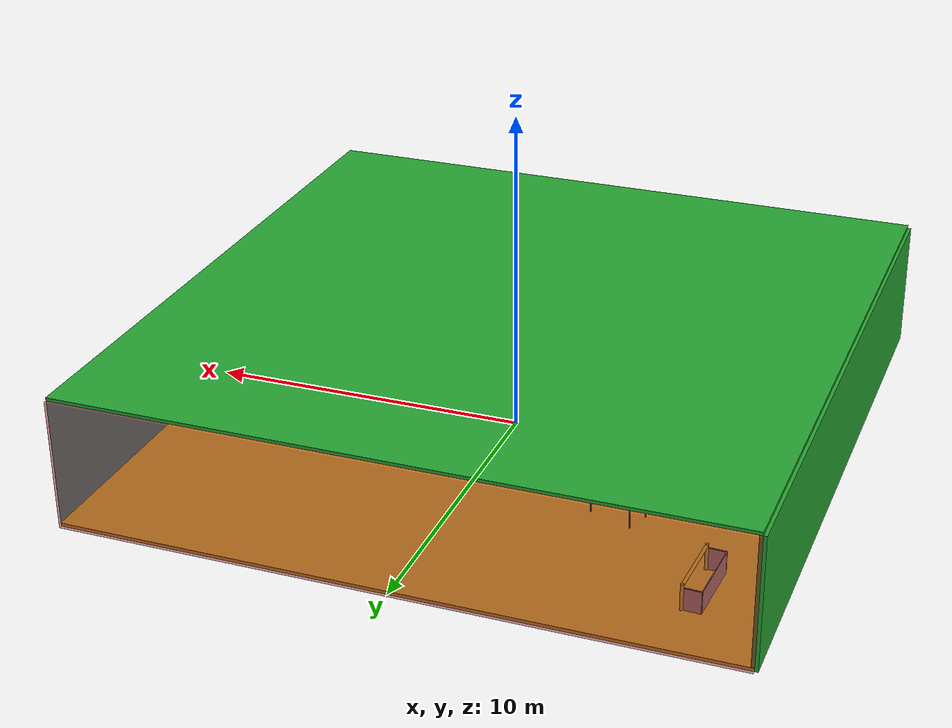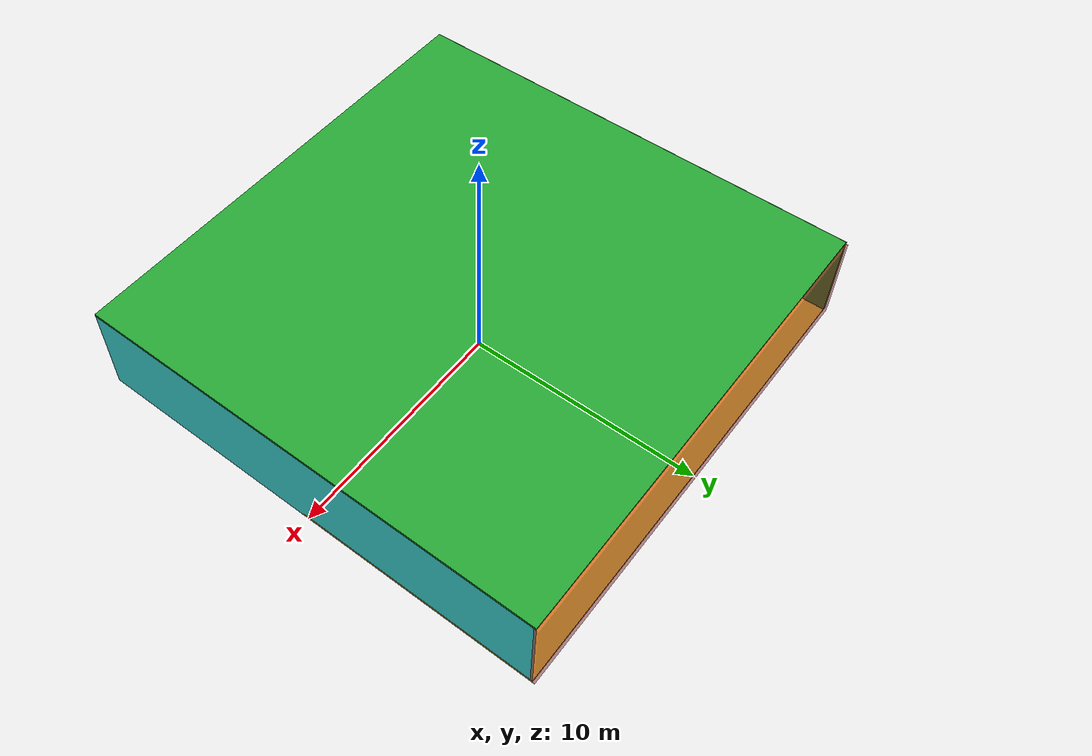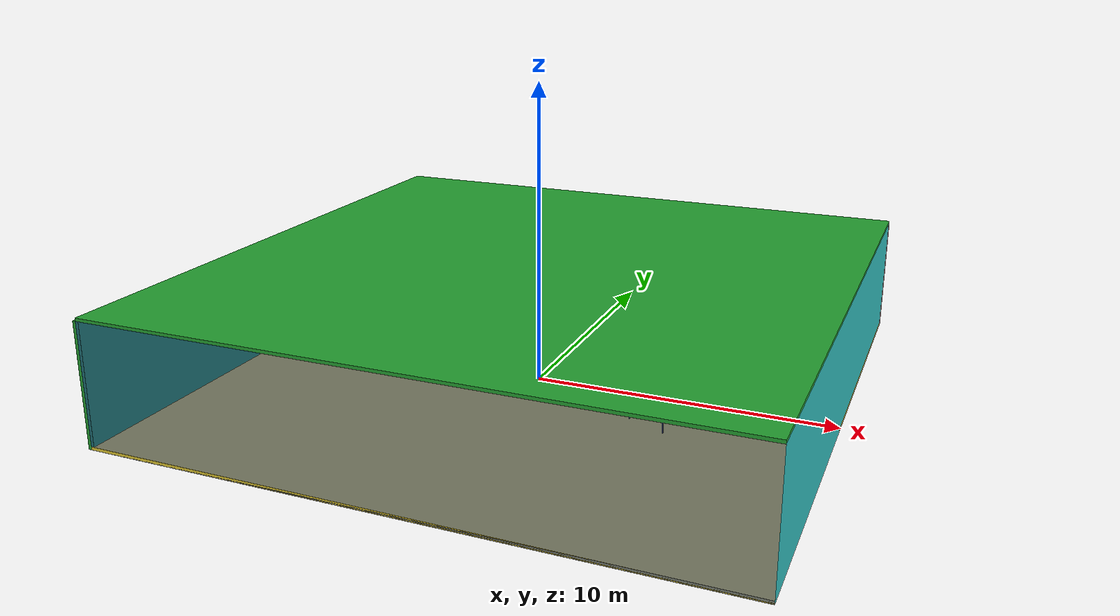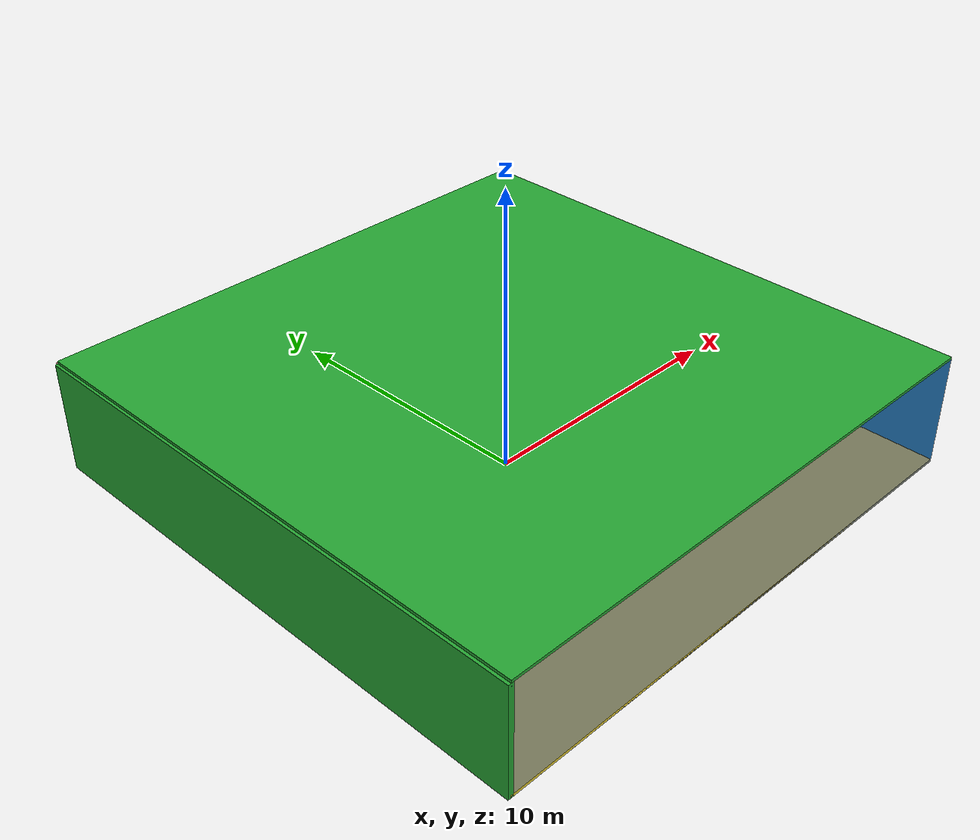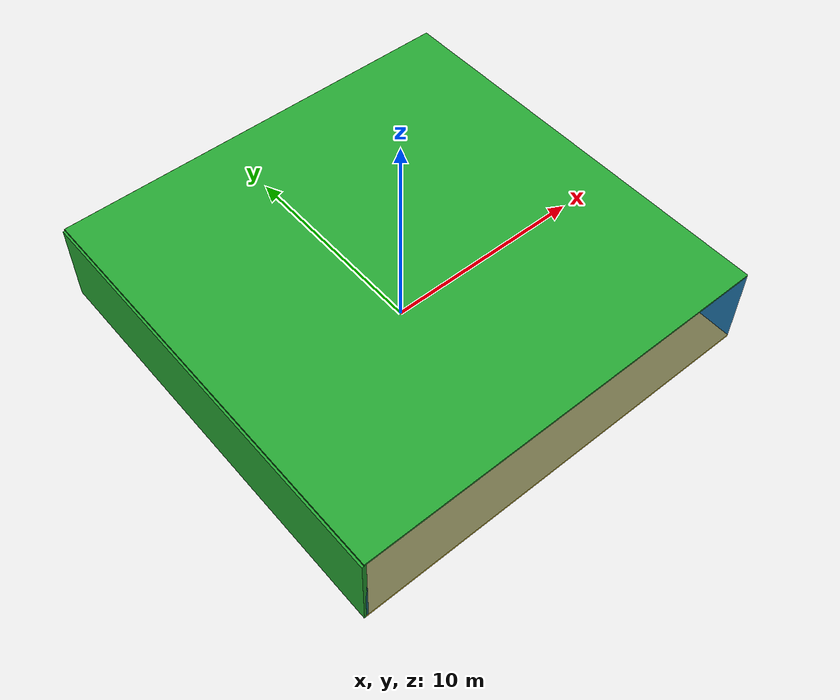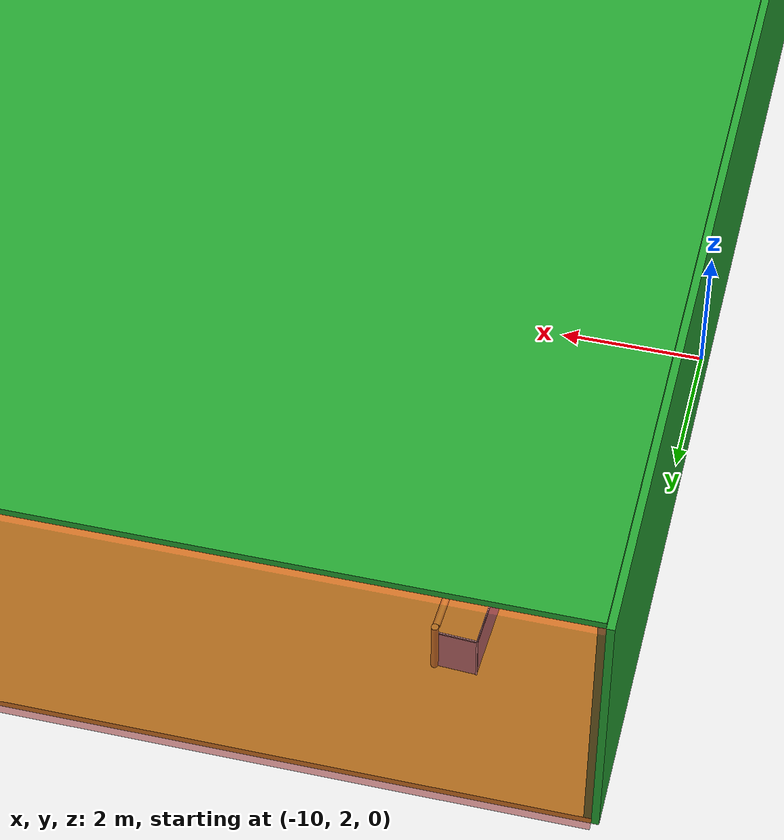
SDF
<sdf version="1.4">
 <world name="default">
  <physics type="ode">
   <max_step_size>0.001</max_step_size>
   <real_time_factor>1</real_time_factor>
   <real_time_update_rate>1000</real_time_update_rate>
   <gravity>0 0 -9.8</gravity>
  </physics>
  <scene><ambient>0.4 0.4 0.4 1</ambient><background>0.7 0.7 0.7 1</background><shadows>1</shadows></scene>
  <model name="Surrounding">
   <static>1</static>
   <link name="Ceiling">
    <collision name="Ceiling_Collision"><geometry><box><size>20 20 0.1</size></box></geometry></collision>
    <visual name="Ceiling_Visual">
     <geometry><box><size>20 20 0.1</size></box></geometry>
     <material>
      <script><uri>file://media/materials/scripts/gazebo.material</uri><name>Gazebo/Green</name></script>
     </material>
    </visual>
    <pose>0 0 4.05 0 0 0</pose>
   </link>
   <link name="Wall_South">
    <collision name="Wall_South_Collision">
     <geometry><box><size>20 0 4</size></box></geometry>
     <pose>0 0 2 0 -0 0</pose>
    </collision>
    <visual name="Wall_South_Visual">
     <pose>0 0 2 0 -0 0</pose>
     <geometry><box><size>20 0 4</size></box></geometry>
     <material>
      <script><uri>file://media/materials/scripts/gazebo.material</uri><name>Gazebo/BlueTransparent</name></script>
     </material>
    </visual>
    <velocity_decay><linear>0</linear><angular>0</angular></velocity_decay>
    <pose>0 -10 0 0 -0 0</pose>
   </link>
   <link name="Wall_East">
    <collision name="Wall_21_Collision">
     <geometry><box><size>20 0 4</size></box></geometry>
     <pose>0 0 2 0 -0 0</pose>
    </collision>
    <visual name="Wall_21_Visual">
     <pose>0 0 2 0 -0 0</pose>
     <geometry><box><size>20 0 4</size></box></geometry>
     <material>
      <script><uri>file://media/materials/scripts/gazebo.material</uri><name>Gazebo/Turquoise</name></script>
     </material>
    </visual>
    <velocity_decay><linear>0</linear><angular>0</angular></velocity_decay>
    <pose>10 0 0 0 -0 1.5708</pose>
   </link>
   <link name="Wall_North">
    <collision name="Wall_22_Collision">
     <geometry><box><size>20 0.2 4</size></box></geometry>
     <pose>0 0 2 0 -0 0</pose>
    </collision>
    <visual name="Wall_22_Visual">
     <pose>0 0 2 0 -0 0</pose>
     <geometry><box><size>20 0.2 4</size></box></geometry>
     <material>
      <script><uri>file://media/materials/scripts/gazebo.material</uri><name>Gazebo/RedTransparent</name></script>
     </material>
    </visual>
    <velocity_decay><linear>0</linear><angular>0</angular></velocity_decay>
    <pose>0 10 0 0 -0 0</pose>
   </link>
   <link name="Wall_West">
    <collision name="Wall_23_Collision">
     <geometry><box><size>20 0.2 4</size></box></geometry>
     <pose>0 0 2 0 -0 0</pose>
    </collision>
    <visual name="Wall_23_Visual">
     <pose>0 0 2 0 -0 0</pose>
     <geometry><box><size>20 0.2 4</size></box></geometry>
     <material>
      <script><uri>file://media/materials/scripts/gazebo.material</uri><name>Gazebo/GreenGlow</name></script>
     </material>
    </visual>
    <velocity_decay><linear>0</linear><angular>0</angular></velocity_decay>
    <pose>-10 0 0 0 0 -1.5708</pose>
   </link>
   <link name="Ground_link">
    <collision name="collision">
     <pose>0 0 .05 0 -0 0</pose>
     <geometry><box><size>20 20 0.1</size></box></geometry>
    </collision>
    <visual name="visual">
     <pose>0 0 .05 0 -0 0</pose>
     <geometry><box><size>20 20 0.1</size></box></geometry>
     <material>
      <script><uri>file://media/materials/scripts/gazebo.material</uri><name>Gazebo/ZincYellow</name></script>
     </material>
    </visual>
   </link>
   <static>1</static>
  </model>
  <spherical_coordinates>
   <surface_model>EARTH_WGS84</surface_model>
   <latitude_deg>0</latitude_deg>
   <longitude_deg>0</longitude_deg>
   <elevation>0</elevation>
   <heading_deg>0</heading_deg>
  </spherical_coordinates>
  <light name="lightball_0" type="diffuse">
   <diffuse>0.8 0.8 0.8 1</diffuse>
   <specular>0.2 0.2 0.2 1</specular>
   <attenuation>
    <range>100</range>
    <constant>0.7</constant>
    <linear>0.01</linear>
    <quadratic>0.001</quadratic>
   </attenuation>
   <direction>-0.5 0.1 -0.9</direction>
   <pose>-0.0749941641026 5.3763494284 2.04162992967 0 0 0</pose>
  </light>
  <light name="lightball_1" type="diffuse">
   <diffuse>0.8 0.8 0.8 1</diffuse>
   <specular>0.2 0.2 0.2 1</specular>
   <attenuation>
    <range>100</range>
    <constant>0.7</constant>
    <linear>0.01</linear>
    <quadratic>0.001</quadratic>
   </attenuation>
   <direction>-0.5 0.1 -0.9</direction>
   <pose>4.03885221552 7.36323062318 3.81836424077 0 0 0</pose>
  </light>
  <light name="lightball_2" type="diffuse">
   <diffuse>0.8 0.8 0.8 1</diffuse>
   <specular>0.2 0.2 0.2 1</specular>
   <attenuation>
    <range>100</range>
    <constant>0.7</constant>
    <linear>0.01</linear>
    <quadratic>0.001</quadratic>
   </attenuation>
   <direction>-0.5 0.1 -0.9</direction>
   <pose>6.65970235185 9.92614696054 2.69163177671 0 0 0</pose>
  </light>
  <light name="lightball_3" type="diffuse">
   <diffuse>0.8 0.8 0.8 1</diffuse>
   <specular>0.2 0.2 0.2 1</specular>
   <attenuation>
    <range>100</range>
    <constant>0.7</constant>
    <linear>0.01</linear>
    <quadratic>0.001</quadratic>
   </attenuation>
   <direction>-0.5 0.1 -0.9</direction>
   <pose>2.09702891374 1.29525528337 3.00923442334 0 0 0</pose>
  </light>
  <include>
   <uri>model://robocup_3Dsim_goal</uri>
   <pose>-7.62039421821 7.09155744707 0 0 0 3.09063281923</pose>
  </include>
  <include><uri>model://cabinet</uri><pose>-4.51077132899 2.0457606648 0 0 0 1.90948516037</pose></include>
  <include><uri>model://table</uri><pose>-4.59821946331 4.17059367514 0 0 0 2.80270249597</pose></include>
  <include><uri>model://table</uri><pose>4.68229618855 -1.98368989935 0 0 0 2.70402741827</pose></include>
  <include>
   <uri>model://construction_cone</uri>
   <pose>7.23208107212 2.22497328464 0 0 0 1.77013346257</pose>
  </include>
 </world>
</sdf>

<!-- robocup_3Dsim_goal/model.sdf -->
<sdf version="1.5">
  <model name="robocup_3d_goal">
    <static>true</static>
    <link name="left_post">
      <pose>0 1.05 0.45 0 0 0</pose>
      <collision name="collision">
        <geometry>
          <cylinder>
            <radius>0.05</radius>
            <length>0.9</length>
          </cylinder>
        </geometry>
      </collision>
      <visual name="visual">
        <geometry>
          <cylinder>
            <radius>0.05</radius>
            <length>0.9</length>
          </cylinder>
        </geometry>
        <material>
          <script>
            <uri>file://media/materials/scripts/gazebo.material</uri>
            <name>Gazebo/ZincYellow</name>
          </script>
        </material>
      </visual>
    </link>
    <link name="left_support_horiz_lower">
      <pose>0.30 1.05 0.01 0 0 0</pose>
      <collision name="collision">
        <geometry>
          <box>
            <size>0.50 0.02 0.02</size>
          </box>
        </geometry>
      </collision>
      <visual name="visual">
        <geometry>
          <box>
            <size>0.50 0.02 0.02</size>
          </box>
        </geometry>
        <material>
          <script>
            <uri>file://media/materials/scripts/gazebo.material</uri>
            <name>Gazebo/White</name>
          </script>
        </material>
      </visual>
    </link>
    <link name="left_support_horiz_upper">
      <pose>0.30 1.05 0.79 0 0 0</pose>
      <collision name="collision">
        <geometry>
          <box>
            <size>0.50 0.02 0.02</size>
          </box>
        </geometry>
      </collision>
      <visual name="visual">
        <geometry>
          <box>
            <size>0.50 0.02 0.02</size>
          </box>
        </geometry>
        <material>
          <script>
            <uri>file://media/materials/scripts/gazebo.material</uri>
            <name>Gazebo/White</name>
          </script>
        </material>
      </visual>
    </link>
    <link name="left_support_vertical">
      <pose>0.56 1.05 0.4 0 1.5708 0</pose>
      <collision name="collision">
        <geometry>
          <box>
            <size>0.80 0.02 0.02</size>
          </box>
        </geometry>
      </collision>
      <visual name="visual">
        <geometry>
          <box>
            <size>0.80 0.02 0.02</size>
          </box>
        </geometry>
        <material>
          <script>
            <uri>file://media/materials/scripts/gazebo.material</uri>
            <name>Gazebo/White</name>
          </script>
        </material>
      </visual>
    </link>
    <link name="right_support_horiz_lower">
      <pose>0.30 -1.05 0.01 0 0 0</pose>
      <collision name="collision">
        <geometry>
          <box>
            <size>0.50 0.02 0.02</size>
          </box>
        </geometry>
      </collision>
      <visual name="visual">
        <geometry>
          <box>
            <size>0.50 0.02 0.02</size>
          </box>
        </geometry>
        <material>
          <script>
            <uri>file://media/materials/scripts/gazebo.material</uri>
            <name>Gazebo/White</name>
          </script>
        </material>
      </visual>
    </link>
    <link name="right_support_horiz_upper">
      <pose>0.30 -1.05 0.79 0 0 0</pose>
      <collision name="collision">
        <geometry>
          <box>
            <size>0.50 0.02 0.02</size>
          </box>
        </geometry>
      </collision>
      <visual name="visual">
        <geometry>
          <box>
            <size>0.50 0.02 0.02</size>
          </box>
        </geometry>
        <material>
          <script>
            <uri>file://media/materials/scripts/gazebo.material</uri>
            <name>Gazebo/White</name>
          </script>
        </material>
      </visual>
    </link>
    <link name="right_support_vertical">
      <pose>0.56 -1.05 0.4 0 1.5708 0</pose>
      <collision name="collision">
        <geometry>
          <box>
            <size>0.80 0.02 0.02</size>
          </box>
        </geometry>
      </collision>
      <visual name="visual">
        <geometry>
          <box>
            <size>0.80 0.02 0.02</size>
          </box>
        </geometry>
        <material>
          <script>
            <uri>file://media/materials/scripts/gazebo.material</uri>
            <name>Gazebo/White</name>
          </script>
        </material>
      </visual>
    </link>
    <link name="center_support_horiz_lower">
      <pose>0.56 0 0.01 0 1.5708 0</pose>
      <collision name="collision">
        <geometry>
          <box>
            <size>0.02 2.08 0.02</size>
          </box>
        </geometry>
      </collision>
      <visual name="visual">
        <geometry>
          <box>
            <size>0.02 2.08 0.02</size>
          </box>
        </geometry>
        <material>
          <script>
            <uri>file://media/materials/scripts/gazebo.material</uri>
            <name>Gazebo/White</name>
          </script>
        </material>
      </visual>
    </link>
    <link name="center_support_horiz_upper">
      <pose>0.56 0 0.79 0 1.5708 0</pose>
      <collision name="collision">
        <geometry>
          <box>
            <size>0.02 2.08 0.02</size>
          </box>
        </geometry>
      </collision>
      <visual name="visual">
        <geometry>
          <box>
            <size>0.02 2.08 0.02</size>
          </box>
        </geometry>
        <material>
          <script>
            <uri>file://media/materials/scripts/gazebo.material</uri>
            <name>Gazebo/White</name>
          </script>
        </material>
      </visual>
    </link>
    <link name="right_post">
      <pose>0 -1.05 0.45 0 0 0</pose>
      <collision name="collision">
        <geometry>
          <cylinder>
            <radius>0.05</radius>
            <length>0.9</length>
          </cylinder>
        </geometry>
      </collision>
      <visual name="visual">
        <geometry>
          <cylinder>
            <radius>0.05</radius>
            <length>0.9</length>
          </cylinder>
        </geometry>
        <material>
          <script>
            <uri>file://media/materials/scripts/gazebo.material</uri>
            <name>Gazebo/ZincYellow</name>
          </script>
        </material>
      </visual>
    </link>
    <link name="crossbar">
      <pose>0 0 0.85 1.57 1.57 0</pose>
      <collision name="collision">
        <geometry>
          <cylinder>
            <radius>0.05</radius>
            <length>2.0</length>
          </cylinder>
        </geometry>
      </collision>
      <visual name="visual">
        <geometry>
          <cylinder>
            <radius>0.05</radius>
            <length>2.0</length>
          </cylinder>
        </geometry>
        <material>
          <script>
            <uri>file://media/materials/scripts/gazebo.material</uri>
            <name>Gazebo/ZincYellow</name>
          </script>
        </material>
      </visual>
    </link>
    <link name="center_net">
      <pose>0.56 0 0.40 0 0 0</pose>
      <collision name="collision">
        <geometry>
          <box>
            <size>0.01 2.1 0.80</size>
          </box>
        </geometry>
      </collision>
      <visual name="visual">
        <geometry>
          <box>
            <size>0.01 2.1 0.80</size>
          </box>
        </geometry>
        <material>
          <script>
            <uri>model://../model_source/models/robocup09_spl_field/materials/scripts/</uri>
            <uri>model://../model_source/models/robocup09_spl_field/materials/textures/</uri>
            <name>RoboCup/Net</name>
          </script>
        </material>
      </visual>
    </link>
    <link name="left_net">
      <pose>0.30 1.05 0.40 0 0 0</pose>
      <collision name="collision">
        <geometry>
          <box>
            <size>0.50 0.01 0.76</size>
          </box>
        </geometry>
      </collision>
      <visual name="visual">
        <geometry>
          <box>
            <size>0.50 0.01 0.76</size>
          </box>
        </geometry>
        <material>
          <script>
            <uri>model://../model_source/models/robocup09_spl_field/materials/scripts/</uri>
            <uri>model://../model_source/models/robocup09_spl_field/materials/textures/</uri>
            <name>RoboCup/Net</name>
          </script>
        </material>
      </visual>
    </link>
    <link name="right_net">
      <pose>0.30 -1.05 0.40 0 0 0</pose>
      <collision name="collision">
        <geometry>
          <box>
            <size>0.50 0.01 0.76</size>
          </box>
        </geometry>
      </collision>
      <visual name="visual">
        <geometry>
          <box>
            <size>0.50 0.01 0.76</size>
          </box>
        </geometry>
        <material>
          <script>
            <uri>model://../model_source/models/robocup09_spl_field/materials/scripts/</uri>
            <uri>model://../model_source/models/robocup09_spl_field/materials/textures/</uri>
            <name>RoboCup/Net</name>
          </script>
        </material>
      </visual>
    </link>
  </model>
</sdf>

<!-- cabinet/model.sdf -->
<sdf version="1.5">
  <model name="cabinet">
    <static>true</static>
    <link name="cabinet_bottom_plate">
      <inertial>
        <pose>0 0 -1 0 0 0</pose>
        <inertia>
          <ixx>2.050000</ixx>
          <ixy>0</ixy>
          <ixz>0</ixz>
          <iyy>2.050000</iyy>
          <iyz>0</iyz>
          <izz>2.050000</izz>
        </inertia>
        <mass>25.000000</mass>
      </inertial>
      <collision name="cabinet_bottom_plate_geom">
        <pose>0 0 0.010000 0 0 0</pose>
        <geometry>
          <box>
            <size>0.450000 0.450000 0.020000</size>
          </box>
        </geometry>
      </collision>
      <visual name="cabinet_bottom_plate_geom_visual">
        <pose>0 0 0.010000 0 0 0</pose>
        <geometry>
          <box>
            <size>0.450000 0.450000 0.020000</size>
          </box>
        </geometry>
        <material>
          <script>
            <uri>model://media/materials/scripts/gazebo.material</uri>
            <name>Gazebo/Wood</name>
          </script>
        </material>
      </visual>
      <collision name="cabinet_bottom_plate_geom_cabinet_back_plate">
        <pose>0.235000 0 0.510000 0 0 0</pose>
        <geometry>
          <box>
            <size>0.020000 0.450000 1.020000</size>
          </box>
        </geometry>
      </collision>
      <visual name="cabinet_bottom_plate_geom_cabinet_back_plate_visual">
        <pose>0.235000 0 0.510000 0 0 0</pose>
        <geometry>
          <box>
            <size>0.020000 0.450000 1.020000</size>
          </box>
        </geometry>
        <material>
          <script>
            <uri>model://media/materials/scripts/gazebo.material</uri>
            <name>Gazebo/Wood</name>
          </script>
        </material>
      </visual>
      <collision name="cabinet_bottom_plate_geom_cabinet_left_plate">
        <pose>0 0.235000 0.510000 0 0 0</pose>
        <geometry>
          <box>
            <size>0.450000 0.020000 1.020000</size>
          </box>
        </geometry>
      </collision>
      <visual name="cabinet_bottom_plate_geom_cabinet_left_plate_visual">
        <pose>0 0.235000 0.510000 0 0 0</pose>
        <geometry>
          <box>
            <size>0.450000 0.020000 1.020000</size>
          </box>
        </geometry>
        <material>
          <script>
            <uri>model://media/materials/scripts/gazebo.material</uri>
            <name>Gazebo/Wood</name>
          </script>
        </material>
      </visual>
      <collision name="cabinet_bottom_plate_geom_cabinet_middle_plate">
        <pose>0 0 0.510000 0 0 0</pose>
        <geometry>
          <box>
            <size>0.450000 0.450000 0.020000</size>
          </box>
        </geometry>
      </collision>
      <visual name="cabinet_bottom_plate_geom_cabinet_middle_plate_visual">
        <pose>0 0 0.510000 0 0 0</pose>
        <geometry>
          <box>
            <size>0.450000 0.450000 0.020000</size>
          </box>
        </geometry>
        <material>
          <script>
            <uri>model://media/materials/scripts/gazebo.material</uri>
            <name>Gazebo/Wood</name>
          </script>
        </material>
      </visual>
      <collision name="cabinet_bottom_plate_geom_cabinet_right_plate">
        <pose>0 -0.235000 0.510000 0 0 0</pose>
        <geometry>
          <box>
            <size>0.450000 0.020000 1.020000</size>
          </box>
        </geometry>
      </collision>
      <visual name="cabinet_bottom_plate_geom_cabinet_right_plate_visual">
        <pose>0 -0.235000 0.510000 0 0 0</pose>
        <geometry>
          <box>
            <size>0.450000 0.020000 1.020000</size>
          </box>
        </geometry>
        <material>
          <script>
            <uri>model://media/materials/scripts/gazebo.material</uri>
            <name>Gazebo/Wood</name>
          </script>
        </material>
      </visual>
      <collision name="cabinet_bottom_plate_geom_cabinet_top_plate">
        <pose>0 0 1.010000 0 0 0</pose>
        <geometry>
          <box>
            <size>0.450000 0.450000 0.020000</size>
          </box>
        </geometry>
      </collision>
      <visual name="cabinet_bottom_plate_geom_cabinet_top_plate_visual">
        <pose>0 0 1.010000 0 0 0</pose>
        <geometry>
          <box>
            <size>0.450000 0.450000 0.020000</size>
          </box>
        </geometry>
        <material>
          <script>
            <uri>model://media/materials/scripts/gazebo.material</uri>
            <name>Gazebo/Wood</name>
          </script>
        </material>
      </visual>
    </link>
  </model>
</sdf>

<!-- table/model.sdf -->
<sdf version="1.5">
  <model name="table">
    <static>true</static>
    <link name="link">
      <collision name="surface">
        <pose>0 0 1.0 0 0 0</pose>
        <geometry>
          <box>
            <size>1.5 0.8 0.03</size>
          </box>
        </geometry>
        <surface>
          <friction>
            <ode>
              <mu>0.6</mu>
              <mu2>0.6</mu2>
            </ode>
          </friction>
        </surface>
      </collision>
      <visual name="visual1">
        <pose>0 0 1.0 0 0 0</pose>
        <geometry>
          <box>
            <size>1.5 0.8 0.03</size>
          </box>
        </geometry>
        <material>
          <script>
            <uri>model://media/materials/scripts/gazebo.material</uri>
            <name>Gazebo/Wood</name>
          </script>
        </material>
      </visual>
      <collision name="front_left_leg">
        <pose>0.68 0.38 0.5 0 0 0</pose>
        <geometry>
          <cylinder>
            <radius>0.02</radius>
            <length>1.0</length>
          </cylinder>
        </geometry>
      </collision>
      <visual name="front_left_leg">
        <pose>0.68 0.38 0.5 0 0 0</pose>
        <geometry>
          <cylinder>
            <radius>0.02</radius>
            <length>1.0</length>
          </cylinder>
        </geometry>
        <material>
          <script>
            <uri>model://media/materials/scripts/gazebo.material</uri>
            <name>Gazebo/Grey</name>
          </script>
        </material>
      </visual>
      <collision name="front_right_leg">
        <pose>0.68 -0.38 0.5 0 0 0</pose>
        <geometry>
          <cylinder>
            <radius>0.02</radius>
            <length>1.0</length>
          </cylinder>
        </geometry>
      </collision>
      <visual name="front_right_leg">
        <pose>0.68 -0.38 0.5 0 0 0</pose>
        <geometry>
          <cylinder>
            <radius>0.02</radius>
            <length>1.0</length>
          </cylinder>
        </geometry>
        <material>
          <script>
            <uri>model://media/materials/scripts/gazebo.material</uri>
            <name>Gazebo/Grey</name>
          </script>
        </material>
      </visual>
      <collision name="back_right_leg">
        <pose>-0.68 -0.38 0.5 0 0 0</pose>
        <geometry>
          <cylinder>
            <radius>0.02</radius>
            <length>1.0</length>
          </cylinder>
        </geometry>
      </collision>
      <visual name="back_right_leg">
        <pose>-0.68 -0.38 0.5 0 0 0</pose>
        <geometry>
          <cylinder>
            <radius>0.02</radius>
            <length>1.0</length>
          </cylinder>
        </geometry>
        <material>
          <script>
            <uri>model://media/materials/scripts/gazebo.material</uri>
            <name>Gazebo/Grey</name>
          </script>
        </material>
      </visual>
      <collision name="back_left_leg">
        <pose>-0.68 0.38 0.5 0 0 0</pose>
        <geometry>
          <cylinder>
            <radius>0.02</radius>
            <length>1.0</length>
          </cylinder>
        </geometry>
      </collision>
      <visual name="back_left_leg">
        <pose>-0.68 0.38 0.5 0 0 0</pose>
        <geometry>
          <cylinder>
            <radius>0.02</radius>
            <length>1.0</length>
          </cylinder>
        </geometry>
        <material>
          <script>
            <uri>model://media/materials/scripts/gazebo.material</uri>
            <name>Gazebo/Grey</name>
          </script>
        </material>
      </visual>
    </link>
  </model>
</sdf>

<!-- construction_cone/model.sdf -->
<sdf version="1.5">
  <model name="Construction Cone">
    <link name="link">
      <collision name="collision">
        <geometry>
          <mesh>
            <scale>10 10 10</scale>
            <uri>file://isr-testbed/construction_cone/meshes/construction_cone.dae</uri>
          </mesh>
        </geometry>
      </collision>
      <visual name="visual">
        <geometry>
          <mesh>
            <scale>10 10 10</scale>
            <uri>file://isr-testbed/construction_cone/meshes/construction_cone.dae</uri>
          </mesh>
        </geometry>
      </visual>
    </link>
  </model>
</sdf>
